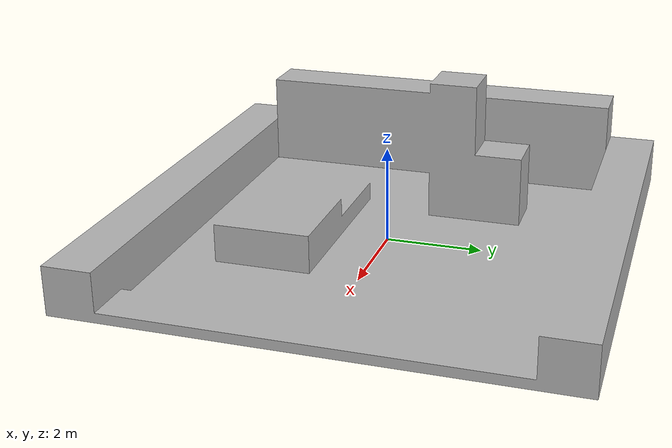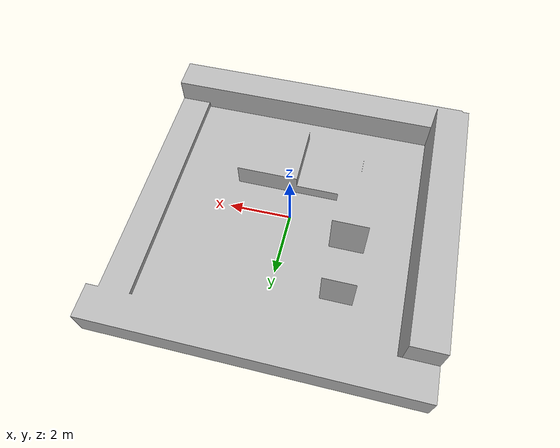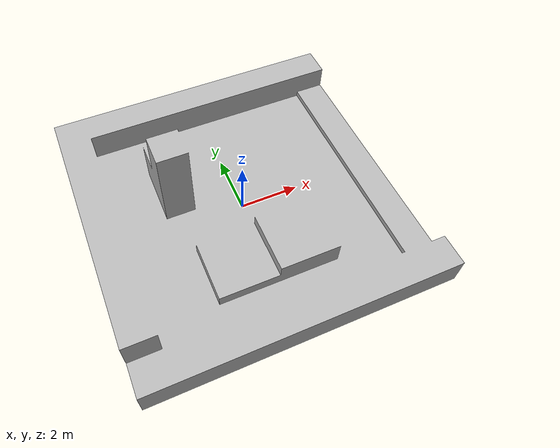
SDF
<?xml version="1.0" ?>
<sdf version="1.4">
  <world name="default">

    <physics type="ode">
      <gravity>0 0 -9.81</gravity>
      <ode>
        <solver>
          <type>quick</type>
          <iters>20</iters>
          <sor>1.0</sor>
        </solver>
        <constraints>
          <cfm>0.0</cfm>
          <erp>0.2</erp>
          <contact_max_correcting_vel>100.0</contact_max_correcting_vel>
          <contact_surface_layer>0.0</contact_surface_layer>
        </constraints>
      </ode>
      <real_time_update_rate>1000</real_time_update_rate>
      <max_step_size>0.001</max_step_size>
    </physics>

    <light type="directional" name="light1">
      <cast_shadows>true</cast_shadows>
      <pose>4.07625 1.00545 5.90386 0 0 0</pose>
      <diffuse>0.0 0.0 0.0 1.0</diffuse>
      <specular>0.1 0.1 0.1 1</specular>
      <attenuation>
        <range>100</range>
        <constant>1.0</constant>
        <linear>1.0</linear>
        <quadratic>1.0</quadratic>
      </attenuation>
      <direction>0.2 0.0 -1.0</direction>
    </light>

    <include>
      <uri>model://sun</uri>
    </include>

    <include>
      <uri>model://simple10x10</uri>
      <pose>0 0 0 0 0 0.0</pose>
    </include>

    <gui fullscreen="0">
      <camera name="user_camera">
        <pose>1.152670 -0.041479 3.496780 0.000000 1.123640 3.132190</pose>
        <view_controller>orbit</view_controller>
      </camera>
    </gui>

  </world>
</sdf>

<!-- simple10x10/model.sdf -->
<sdf version="1.4">
  <model name="simple10x10">
    <static>1</static>
    <link name="link">
      <collision name="colision1">
        <pose>0 0 0 0 0 0</pose>
        <geometry>
          <mesh>
            <uri>model://simple10x10/meshes/simple10x10_high.dae</uri>
	    <scale> 1 1 1 </scale>
          </mesh>
        </geometry>
        <surface>
          <bounce />
          <friction>
            <ode />
          </friction>
          <contact>
            <ode />
          </contact>
        </surface>
      </collision>
      <visual name="visual1">
        <pose>0 0 0 0 0 0</pose>
        <geometry>
          <mesh>
            <uri>model://simple10x10/meshes/simple10x10_high.dae</uri>
	    <scale> 1 1 1 </scale>
          </mesh>
        </geometry>
      </visual>
    </link>
  </model>
</sdf>
